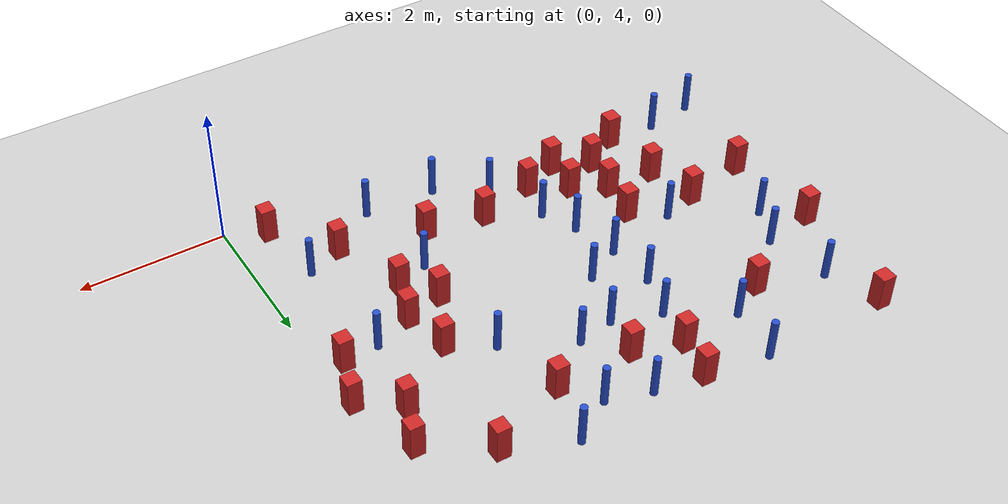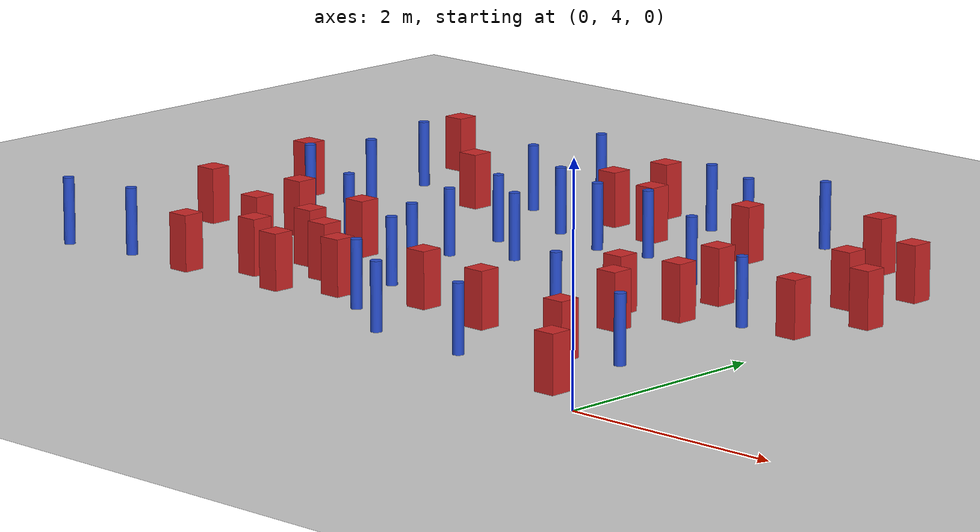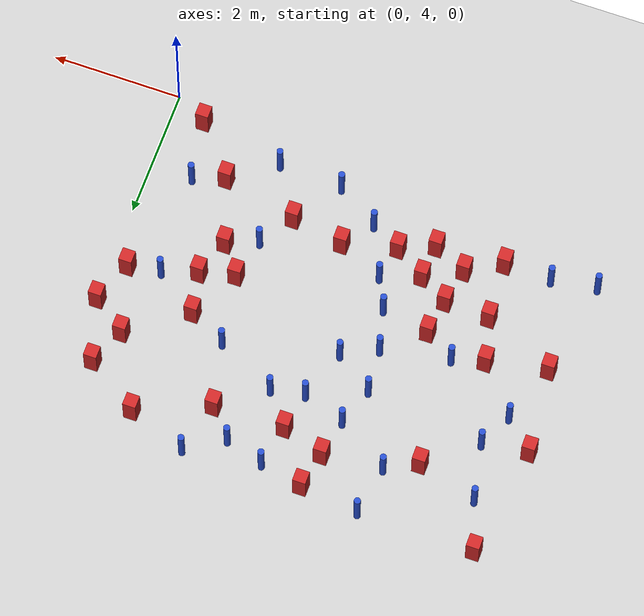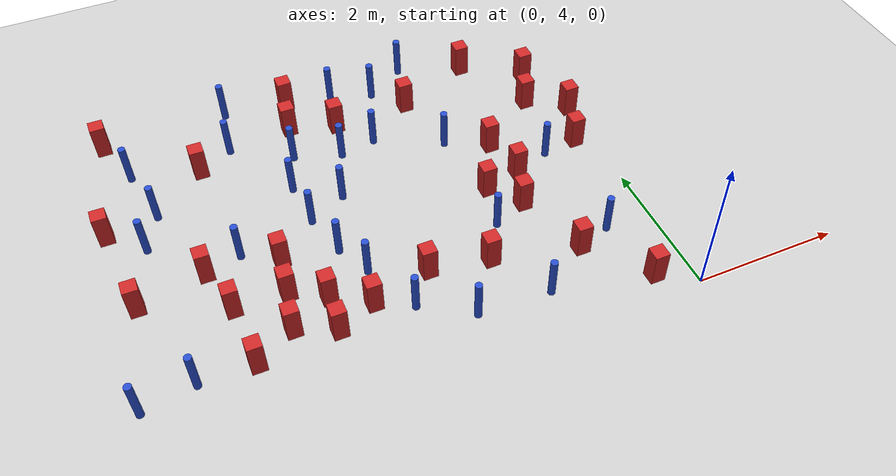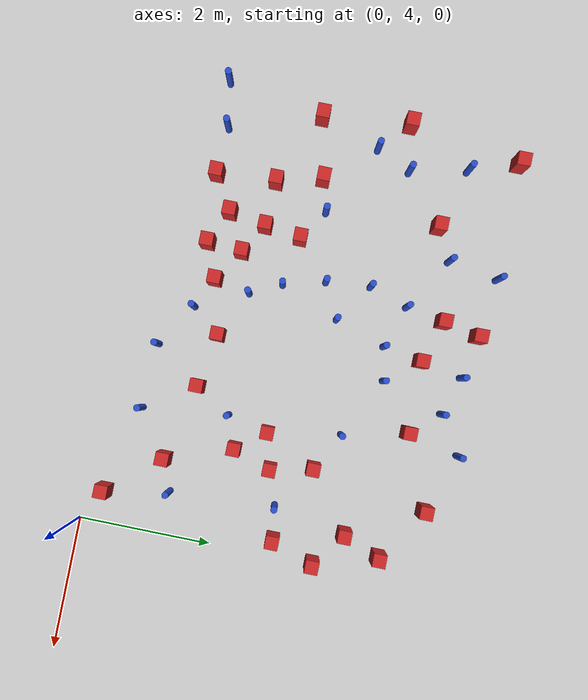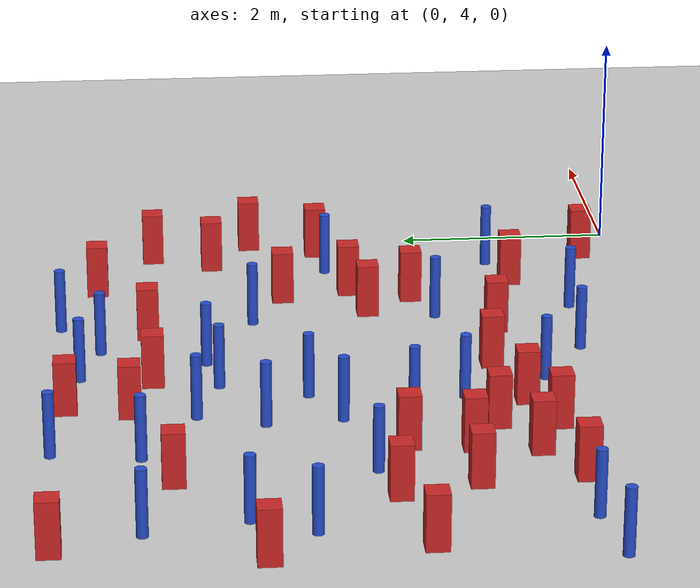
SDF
<sdf version="1.6">
 <world name="default">
  <model name="ground_plane">
   <static>1</static>
   <link name="link">
    <collision name="collision">
     <geometry><plane><normal>0 0 1</normal><size>100 100</size></plane></geometry>
     <surface><friction><ode><mu>100</mu><mu2>50</mu2></ode></friction></surface>
    </collision>
    <visual name="visual">
     <cast_shadows>0</cast_shadows>
     <geometry><plane><normal>0 0 1</normal><size>100 100</size></plane></geometry>
     <material>
      <ambient>1.0 1.0 1.0 1.0</ambient>
      <diffuse>0.8 0.8 0.8 1.0</diffuse>
      <specular>0.01 0.01 0.01 1.000000</specular>
     </material>
    </visual>
   </link>
  </model>
  <model name="square_post_obstacle1">
   <static>true</static>
   <pose>-2.25006319276 8.60352125065 -6.11067671241e-07 -5.50515727128e-06 -8.79689657224e-07 2.37013304536e-05</pose>
   <link name="link">
    <pose>0 0 0.25 0 -0 0</pose>
    <inertial>
     <mass>100</mass>
     <inertia>
      <ixx>0.166667</ixx>
      <ixy>0</ixy>
      <ixz>0</ixz>
      <iyy>0.166667</iyy>
      <iyz>0</iyz>
      <izz>0.166667</izz>
     </inertia>
    </inertial>
    <collision name="collision"><geometry><box><size>.2 .2 .5</size></box></geometry></collision>
    <visual name="visual">
     <geometry><box><size>.2 .2 .5</size></box></geometry>
     <material>
      <script><name>Gazebo/Red</name><uri>file://media/materials/scripts/gazebo.material</uri></script>
     </material>
    </visual>
   </link>
  </model>
  <model name="square_post_obstacle3">
   <static>true</static>
   <pose>-4.47341530026 5.08891844181 -6.11067671241e-07 -5.50515727128e-06 -8.79689657224e-07 2.37013304536e-05</pose>
   <link name="link">
    <pose>0 0 0.25 0 -0 0</pose>
    <inertial>
     <mass>100</mass>
     <inertia>
      <ixx>0.166667</ixx>
      <ixy>0</ixy>
      <ixz>0</ixz>
      <iyy>0.166667</iyy>
      <iyz>0</iyz>
      <izz>0.166667</izz>
     </inertia>
    </inertial>
    <collision name="collision"><geometry><box><size>.2 .2 .5</size></box></geometry></collision>
    <visual name="visual">
     <geometry><box><size>.2 .2 .5</size></box></geometry>
     <material>
      <script><name>Gazebo/Red</name><uri>file://media/materials/scripts/gazebo.material</uri></script>
     </material>
    </visual>
   </link>
  </model>
  <model name="square_post_obstacle4">
   <static>true</static>
   <pose>-0.0432336182488 7.56572862312 -6.11067671241e-07 -5.50515727128e-06 -8.79689657224e-07 2.37013304536e-05</pose>
   <link name="link">
    <pose>0 0 0.25 0 -0 0</pose>
    <inertial>
     <mass>100</mass>
     <inertia>
      <ixx>0.166667</ixx>
      <ixy>0</ixy>
      <ixz>0</ixz>
      <iyy>0.166667</iyy>
      <iyz>0</iyz>
      <izz>0.166667</izz>
     </inertia>
    </inertial>
    <collision name="collision"><geometry><box><size>.2 .2 .5</size></box></geometry></collision>
    <visual name="visual">
     <geometry><box><size>.2 .2 .5</size></box></geometry>
     <material>
      <script><name>Gazebo/Red</name><uri>file://media/materials/scripts/gazebo.material</uri></script>
     </material>
    </visual>
   </link>
  </model>
  <model name="pole_obstacle9">
   <static>true</static>
   <pose>-3.83908882054 5.84154530925 -9.47619616065e-06 5.49618799738e-07 2.3631041406e-07 -1.55090534801e-07</pose>
   <link name="link">
    <pose>0 0 0.3 0 -0 0</pose>
    <inertial>
     <mass>1</mass>
     <inertia><ixx>0.145833</ixx><ixy>0</ixy><ixz>0</ixz><iyy>0.145833</iyy><iyz>0</iyz><izz>0.125</izz></inertia>
    </inertial>
    <collision name="collision">
     <geometry><cylinder><radius>0.05</radius><length>.6</length></cylinder></geometry>
    </collision>
    <visual name="visual">
     <geometry><cylinder><radius>0.05</radius><length>.6</length></cylinder></geometry>
     <material>
      <script><name>Gazebo/Blue</name><uri>file://media/materials/scripts/gazebo.material</uri></script>
     </material>
    </visual>
   </link>
  </model>
  <model name="square_post_obstacle31">
   <static>true</static>
   <pose>-0.511008516349 4.30438146115 -6.11067671241e-07 -5.50515727128e-06 -8.79689657224e-07 2.37013304536e-05</pose>
   <link name="link">
    <pose>0 0 0.25 0 -0 0</pose>
    <inertial>
     <mass>100</mass>
     <inertia>
      <ixx>0.166667</ixx>
      <ixy>0</ixy>
      <ixz>0</ixz>
      <iyy>0.166667</iyy>
      <iyz>0</iyz>
      <izz>0.166667</izz>
     </inertia>
    </inertial>
    <collision name="collision"><geometry><box><size>.2 .2 .5</size></box></geometry></collision>
    <visual name="visual">
     <geometry><box><size>.2 .2 .5</size></box></geometry>
     <material>
      <script><name>Gazebo/Red</name><uri>file://media/materials/scripts/gazebo.material</uri></script>
     </material>
    </visual>
   </link>
  </model>
  <model name="pole_obstacle23">
   <static>true</static>
   <pose>-6.12151815289 7.84887427279 -9.47619616065e-06 5.49618799737e-07 2.36310414037e-07 -1.55090534814e-07</pose>
   <link name="link">
    <pose>0 0 0.3 0 -0 0</pose>
    <inertial>
     <mass>1</mass>
     <inertia><ixx>0.145833</ixx><ixy>0</ixy><ixz>0</ixz><iyy>0.145833</iyy><iyz>0</iyz><izz>0.125</izz></inertia>
    </inertial>
    <collision name="collision">
     <geometry><cylinder><radius>0.05</radius><length>.6</length></cylinder></geometry>
    </collision>
    <visual name="visual">
     <geometry><cylinder><radius>0.05</radius><length>.6</length></cylinder></geometry>
     <material>
      <script><name>Gazebo/Blue</name><uri>file://media/materials/scripts/gazebo.material</uri></script>
     </material>
    </visual>
   </link>
  </model>
  <model name="square_post_obstacle33">
   <static>true</static>
   <pose>-5.75571573055 6.5984440061 -6.11067671241e-07 -5.50515727128e-06 -8.79689657224e-07 2.37013304536e-05</pose>
   <link name="link">
    <pose>0 0 0.25 0 -0 0</pose>
    <inertial>
     <mass>100</mass>
     <inertia>
      <ixx>0.166667</ixx>
      <ixy>0</ixy>
      <ixz>0</ixz>
      <iyy>0.166667</iyy>
      <iyz>0</iyz>
      <izz>0.166667</izz>
     </inertia>
    </inertial>
    <collision name="collision"><geometry><box><size>.2 .2 .5</size></box></geometry></collision>
    <visual name="visual">
     <geometry><box><size>.2 .2 .5</size></box></geometry>
     <material>
      <script><name>Gazebo/Red</name><uri>file://media/materials/scripts/gazebo.material</uri></script>
     </material>
    </visual>
   </link>
  </model>
  <model name="pole_obstacle33">
   <static>true</static>
   <pose>-2.82234956257 4.65334116811 -9.47619616065e-06 5.49618799738e-07 2.3631041406e-07 -1.55090534801e-07</pose>
   <link name="link">
    <pose>0 0 0.3 0 -0 0</pose>
    <inertial>
     <mass>1</mass>
     <inertia><ixx>0.145833</ixx><ixy>0</ixy><ixz>0</ixz><iyy>0.145833</iyy><iyz>0</iyz><izz>0.125</izz></inertia>
    </inertial>
    <collision name="collision">
     <geometry><cylinder><radius>0.05</radius><length>.6</length></cylinder></geometry>
    </collision>
    <visual name="visual">
     <geometry><cylinder><radius>0.05</radius><length>.6</length></cylinder></geometry>
     <material>
      <script><name>Gazebo/Blue</name><uri>file://media/materials/scripts/gazebo.material</uri></script>
     </material>
    </visual>
   </link>
  </model>
  <model name="pole_obstacle38">
   <static>true</static>
   <pose>-4.23532948035 6.94570468544 -9.47619616065e-06 5.49618799737e-07 2.36310414037e-07 -1.55090534814e-07</pose>
   <link name="link">
    <pose>0 0 0.3 0 -0 0</pose>
    <inertial>
     <mass>1</mass>
     <inertia><ixx>0.145833</ixx><ixy>0</ixy><ixz>0</ixz><iyy>0.145833</iyy><iyz>0</iyz><izz>0.125</izz></inertia>
    </inertial>
    <collision name="collision">
     <geometry><cylinder><radius>0.05</radius><length>.6</length></cylinder></geometry>
    </collision>
    <visual name="visual">
     <geometry><cylinder><radius>0.05</radius><length>.6</length></cylinder></geometry>
     <material>
      <script><name>Gazebo/Blue</name><uri>file://media/materials/scripts/gazebo.material</uri></script>
     </material>
    </visual>
   </link>
  </model>
  <model name="pole_obstacle39">
   <static>true</static>
   <pose>-4.1013814431 8.21185930917 -9.47619616065e-06 5.49618799737e-07 2.36310414065e-07 -1.55090534796e-07</pose>
   <link name="link">
    <pose>0 0 0.3 0 -0 0</pose>
    <inertial>
     <mass>1</mass>
     <inertia><ixx>0.145833</ixx><ixy>0</ixy><ixz>0</ixz><iyy>0.145833</iyy><iyz>0</iyz><izz>0.125</izz></inertia>
    </inertial>
    <collision name="collision">
     <geometry><cylinder><radius>0.05</radius><length>.6</length></cylinder></geometry>
    </collision>
    <visual name="visual">
     <geometry><cylinder><radius>0.05</radius><length>.6</length></cylinder></geometry>
     <material>
      <script><name>Gazebo/Blue</name><uri>file://media/materials/scripts/gazebo.material</uri></script>
     </material>
    </visual>
   </link>
  </model>
  <model name="pole_obstacle43">
   <static>true</static>
   <pose>-3.71098148753 7.21338325096 -9.4761961606e-06 5.49618799729e-07 2.36310414006e-07 -1.55090534822e-07</pose>
   <link name="link">
    <pose>0 0 0.3 0 -0 0</pose>
    <inertial>
     <mass>1</mass>
     <inertia><ixx>0.145833</ixx><ixy>0</ixy><ixz>0</ixz><iyy>0.145833</iyy><iyz>0</iyz><izz>0.125</izz></inertia>
    </inertial>
    <collision name="collision">
     <geometry><cylinder><radius>0.05</radius><length>.6</length></cylinder></geometry>
    </collision>
    <visual name="visual">
     <geometry><cylinder><radius>0.05</radius><length>.6</length></cylinder></geometry>
     <material>
      <script><name>Gazebo/Blue</name><uri>file://media/materials/scripts/gazebo.material</uri></script>
     </material>
    </visual>
   </link>
  </model>
  <model name="square_post_obstacle50">
   <static>true</static>
   <pose>-5.57753883362 5.91320357837 -6.11067671241e-07 -5.50515727128e-06 -8.79689657224e-07 2.37013304536e-05</pose>
   <link name="link">
    <pose>0 0 0.25 0 -0 0</pose>
    <inertial>
     <mass>100</mass>
     <inertia>
      <ixx>0.166667</ixx>
      <ixy>0</ixy>
      <ixz>0</ixz>
      <iyy>0.166667</iyy>
      <iyz>0</iyz>
      <izz>0.166667</izz>
     </inertia>
    </inertial>
    <collision name="collision"><geometry><box><size>.2 .2 .5</size></box></geometry></collision>
    <visual name="visual">
     <geometry><box><size>.2 .2 .5</size></box></geometry>
     <material>
      <script><name>Gazebo/Red</name><uri>file://media/materials/scripts/gazebo.material</uri></script>
     </material>
    </visual>
   </link>
  </model>
  <model name="square_post_obstacle51">
   <static>true</static>
   <pose>-6.67154297437 6.40697601495 -6.11067671241e-07 -5.50515727128e-06 -8.79689657224e-07 2.37013304536e-05</pose>
   <link name="link">
    <pose>0 0 0.25 0 -0 0</pose>
    <inertial>
     <mass>100</mass>
     <inertia>
      <ixx>0.166667</ixx>
      <ixy>0</ixy>
      <ixz>0</ixz>
      <iyy>0.166667</iyy>
      <iyz>0</iyz>
      <izz>0.166667</izz>
     </inertia>
    </inertial>
    <collision name="collision"><geometry><box><size>.2 .2 .5</size></box></geometry></collision>
    <visual name="visual">
     <geometry><box><size>.2 .2 .5</size></box></geometry>
     <material>
      <script><name>Gazebo/Red</name><uri>file://media/materials/scripts/gazebo.material</uri></script>
     </material>
    </visual>
   </link>
  </model>
  <model name="square_post_obstacle52">
   <static>true</static>
   <pose>-0.568543663915 7.95376155736 -6.11067671241e-07 -5.50515727128e-06 -8.79689657224e-07 2.37013304536e-05</pose>
   <link name="link">
    <pose>0 0 0.25 0 -0 0</pose>
    <inertial>
     <mass>100</mass>
     <inertia>
      <ixx>0.166667</ixx>
      <ixy>0</ixy>
      <ixz>0</ixz>
      <iyy>0.166667</iyy>
      <iyz>0</iyz>
      <izz>0.166667</izz>
     </inertia>
    </inertial>
    <collision name="collision"><geometry><box><size>.2 .2 .5</size></box></geometry></collision>
    <visual name="visual">
     <geometry><box><size>.2 .2 .5</size></box></geometry>
     <material>
      <script><name>Gazebo/Red</name><uri>file://media/materials/scripts/gazebo.material</uri></script>
     </material>
    </visual>
   </link>
  </model>
  <model name="square_post_obstacle54">
   <static>true</static>
   <pose>-1.50517017736 6.09258591925 -6.11067671241e-07 -5.50515727128e-06 -8.79689657224e-07 2.37013304536e-05</pose>
   <link name="link">
    <pose>0 0 0.25 0 -0 0</pose>
    <inertial>
     <mass>100</mass>
     <inertia>
      <ixx>0.166667</ixx>
      <ixy>0</ixy>
      <ixz>0</ixz>
      <iyy>0.166667</iyy>
      <iyz>0</iyz>
      <izz>0.166667</izz>
     </inertia>
    </inertial>
    <collision name="collision"><geometry><box><size>.2 .2 .5</size></box></geometry></collision>
    <visual name="visual">
     <geometry><box><size>.2 .2 .5</size></box></geometry>
     <material>
      <script><name>Gazebo/Red</name><uri>file://media/materials/scripts/gazebo.material</uri></script>
     </material>
    </visual>
   </link>
  </model>
  <model name="square_post_obstacle62">
   <static>true</static>
   <pose>-1.3087715869 6.67067279448 -6.11067671241e-07 -5.50515727128e-06 -8.79689657224e-07 2.37013304536e-05</pose>
   <link name="link">
    <pose>0 0 0.25 0 -0 0</pose>
    <inertial>
     <mass>100</mass>
     <inertia>
      <ixx>0.166667</ixx>
      <ixy>0</ixy>
      <ixz>0</ixz>
      <iyy>0.166667</iyy>
      <iyz>0</iyz>
      <izz>0.166667</izz>
     </inertia>
    </inertial>
    <collision name="collision"><geometry><box><size>.2 .2 .5</size></box></geometry></collision>
    <visual name="visual">
     <geometry><box><size>.2 .2 .5</size></box></geometry>
     <material>
      <script><name>Gazebo/Red</name><uri>file://media/materials/scripts/gazebo.material</uri></script>
     </material>
    </visual>
   </link>
  </model>
  <model name="square_post_obstacle67">
   <static>true</static>
   <pose>-3.34194158575 8.57645506459 -6.11067671241e-07 -5.50515727128e-06 -8.79689657224e-07 2.37013304536e-05</pose>
   <link name="link">
    <pose>0 0 0.25 0 -0 0</pose>
    <inertial>
     <mass>100</mass>
     <inertia>
      <ixx>0.166667</ixx>
      <ixy>0</ixy>
      <ixz>0</ixz>
      <iyy>0.166667</iyy>
      <iyz>0</iyz>
      <izz>0.166667</izz>
     </inertia>
    </inertial>
    <collision name="collision"><geometry><box><size>.2 .2 .5</size></box></geometry></collision>
    <visual name="visual">
     <geometry><box><size>.2 .2 .5</size></box></geometry>
     <material>
      <script><name>Gazebo/Red</name><uri>file://media/materials/scripts/gazebo.material</uri></script>
     </material>
    </visual>
   </link>
  </model>
  <model name="square_post_obstacle73">
   <static>true</static>
   <pose>-4.80535518938 6.43678112208 -6.11067671241e-07 -5.50515727128e-06 -8.79689657224e-07 2.37013304536e-05</pose>
   <link name="link">
    <pose>0 0 0.25 0 -0 0</pose>
    <inertial>
     <mass>100</mass>
     <inertia>
      <ixx>0.166667</ixx>
      <ixy>0</ixy>
      <ixz>0</ixz>
      <iyy>0.166667</iyy>
      <iyz>0</iyz>
      <izz>0.166667</izz>
     </inertia>
    </inertial>
    <collision name="collision"><geometry><box><size>.2 .2 .5</size></box></geometry></collision>
    <visual name="visual">
     <geometry><box><size>.2 .2 .5</size></box></geometry>
     <material>
      <script><name>Gazebo/Red</name><uri>file://media/materials/scripts/gazebo.material</uri></script>
     </material>
    </visual>
   </link>
  </model>
  <model name="square_post_obstacle74">
   <static>true</static>
   <pose>-5.38527743276 8.44245769157 -6.11067671241e-07 -5.50515727128e-06 -8.79689657224e-07 2.37013304536e-05</pose>
   <link name="link">
    <pose>0 0 0.25 0 -0 0</pose>
    <inertial>
     <mass>100</mass>
     <inertia>
      <ixx>0.166667</ixx>
      <ixy>0</ixy>
      <ixz>0</ixz>
      <iyy>0.166667</iyy>
      <iyz>0</iyz>
      <izz>0.166667</izz>
     </inertia>
    </inertial>
    <collision name="collision"><geometry><box><size>.2 .2 .5</size></box></geometry></collision>
    <visual name="visual">
     <geometry><box><size>.2 .2 .5</size></box></geometry>
     <material>
      <script><name>Gazebo/Red</name><uri>file://media/materials/scripts/gazebo.material</uri></script>
     </material>
    </visual>
   </link>
  </model>
  <model name="square_post_obstacle75">
   <static>true</static>
   <pose>-6.55936579593 9.45315593938 -6.11067671241e-07 -5.50515727128e-06 -8.79689657224e-07 2.37013304536e-05</pose>
   <link name="link">
    <pose>0 0 0.25 0 -0 0</pose>
    <inertial>
     <mass>100</mass>
     <inertia>
      <ixx>0.166667</ixx>
      <ixy>0</ixy>
      <ixz>0</ixz>
      <iyy>0.166667</iyy>
      <iyz>0</iyz>
      <izz>0.166667</izz>
     </inertia>
    </inertial>
    <collision name="collision"><geometry><box><size>.2 .2 .5</size></box></geometry></collision>
    <visual name="visual">
     <geometry><box><size>.2 .2 .5</size></box></geometry>
     <material>
      <script><name>Gazebo/Red</name><uri>file://media/materials/scripts/gazebo.material</uri></script>
     </material>
    </visual>
   </link>
  </model>
  <model name="square_post_obstacle77">
   <static>true</static>
   <pose>-3.94836429204 5.3076510408 -6.11067671241e-07 -5.50515727128e-06 -8.79689657224e-07 2.37013304536e-05</pose>
   <link name="link">
    <pose>0 0 0.25 0 -0 0</pose>
    <inertial>
     <mass>100</mass>
     <inertia>
      <ixx>0.166667</ixx>
      <ixy>0</ixy>
      <ixz>0</ixz>
      <iyy>0.166667</iyy>
      <iyz>0</iyz>
      <izz>0.166667</izz>
     </inertia>
    </inertial>
    <collision name="collision"><geometry><box><size>.2 .2 .5</size></box></geometry></collision>
    <visual name="visual">
     <geometry><box><size>.2 .2 .5</size></box></geometry>
     <material>
      <script><name>Gazebo/Red</name><uri>file://media/materials/scripts/gazebo.material</uri></script>
     </material>
    </visual>
   </link>
  </model>
  <model name="square_post_obstacle78">
   <static>true</static>
   <pose>-3.8751265757 9.34688753163 -6.11067671241e-07 -5.50515727128e-06 -8.79689657224e-07 2.37013304536e-05</pose>
   <link name="link">
    <pose>0 0 0.25 0 -0 0</pose>
    <inertial>
     <mass>100</mass>
     <inertia>
      <ixx>0.166667</ixx>
      <ixy>0</ixy>
      <ixz>0</ixz>
      <iyy>0.166667</iyy>
      <iyz>0</iyz>
      <izz>0.166667</izz>
     </inertia>
    </inertial>
    <collision name="collision"><geometry><box><size>.2 .2 .5</size></box></geometry></collision>
    <visual name="visual">
     <geometry><box><size>.2 .2 .5</size></box></geometry>
     <material>
      <script><name>Gazebo/Red</name><uri>file://media/materials/scripts/gazebo.material</uri></script>
     </material>
    </visual>
   </link>
  </model>
  <model name="square_post_obstacle79">
   <static>true</static>
   <pose>-1.15653972741 5.0897406758 -6.11067671241e-07 -5.50515727128e-06 -8.79689657224e-07 2.37013304536e-05</pose>
   <link name="link">
    <pose>0 0 0.25 0 -0 0</pose>
    <inertial>
     <mass>100</mass>
     <inertia>
      <ixx>0.166667</ixx>
      <ixy>0</ixy>
      <ixz>0</ixz>
      <iyy>0.166667</iyy>
      <iyz>0</iyz>
      <izz>0.166667</izz>
     </inertia>
    </inertial>
    <collision name="collision"><geometry><box><size>.2 .2 .5</size></box></geometry></collision>
    <visual name="visual">
     <geometry><box><size>.2 .2 .5</size></box></geometry>
     <material>
      <script><name>Gazebo/Red</name><uri>file://media/materials/scripts/gazebo.material</uri></script>
     </material>
    </visual>
   </link>
  </model>
  <model name="pole_obstacle85">
   <static>true</static>
   <pose>-3.21704090867 9.22559836248 -9.47619616065e-06 5.49618799738e-07 2.36310414059e-07 -1.55090534802e-07</pose>
   <link name="link">
    <pose>0 0 0.3 0 -0 0</pose>
    <inertial>
     <mass>1</mass>
     <inertia><ixx>0.145833</ixx><ixy>0</ixy><ixz>0</ixz><iyy>0.145833</iyy><iyz>0</iyz><izz>0.125</izz></inertia>
    </inertial>
    <collision name="collision">
     <geometry><cylinder><radius>0.05</radius><length>.6</length></cylinder></geometry>
    </collision>
    <visual name="visual">
     <geometry><cylinder><radius>0.05</radius><length>.6</length></cylinder></geometry>
     <material>
      <script><name>Gazebo/Blue</name><uri>file://media/materials/scripts/gazebo.material</uri></script>
     </material>
    </visual>
   </link>
  </model>
  <model name="pole_obstacle90">
   <static>true</static>
   <pose>-0.775299651558 6.85420034907 -9.47619616065e-06 5.49618799737e-07 2.36310414065e-07 -1.55090534796e-07</pose>
   <link name="link">
    <pose>0 0 0.3 0 -0 0</pose>
    <inertial>
     <mass>1</mass>
     <inertia><ixx>0.145833</ixx><ixy>0</ixy><ixz>0</ixz><iyy>0.145833</iyy><iyz>0</iyz><izz>0.125</izz></inertia>
    </inertial>
    <collision name="collision">
     <geometry><cylinder><radius>0.05</radius><length>.6</length></cylinder></geometry>
    </collision>
    <visual name="visual">
     <geometry><cylinder><radius>0.05</radius><length>.6</length></cylinder></geometry>
     <material>
      <script><name>Gazebo/Blue</name><uri>file://media/materials/scripts/gazebo.material</uri></script>
     </material>
    </visual>
   </link>
  </model>
  <model name="pole_obstacle95">
   <static>true</static>
   <pose>-2.0522892426 9.40675290309 -9.4761961606e-06 5.49618799729e-07 2.36310414e-07 -1.55090534824e-07</pose>
   <link name="link">
    <pose>0 0 0.3 0 -0 0</pose>
    <inertial>
     <mass>1</mass>
     <inertia><ixx>0.145833</ixx><ixy>0</ixy><ixz>0</ixz><iyy>0.145833</iyy><iyz>0</iyz><izz>0.125</izz></inertia>
    </inertial>
    <collision name="collision">
     <geometry><cylinder><radius>0.05</radius><length>.6</length></cylinder></geometry>
    </collision>
    <visual name="visual">
     <geometry><cylinder><radius>0.05</radius><length>.6</length></cylinder></geometry>
     <material>
      <script><name>Gazebo/Blue</name><uri>file://media/materials/scripts/gazebo.material</uri></script>
     </material>
    </visual>
   </link>
  </model>
  <model name="pole_obstacle97">
   <static>true</static>
   <pose>-6.93066390084 4.92367612603 -9.47619616065e-06 5.49618799737e-07 2.36310414037e-07 -1.55090534814e-07</pose>
   <link name="link">
    <pose>0 0 0.3 0 -0 0</pose>
    <inertial>
     <mass>1</mass>
     <inertia><ixx>0.145833</ixx><ixy>0</ixy><ixz>0</ixz><iyy>0.145833</iyy><iyz>0</iyz><izz>0.125</izz></inertia>
    </inertial>
    <collision name="collision">
     <geometry><cylinder><radius>0.05</radius><length>.6</length></cylinder></geometry>
    </collision>
    <visual name="visual">
     <geometry><cylinder><radius>0.05</radius><length>.6</length></cylinder></geometry>
     <material>
      <script><name>Gazebo/Blue</name><uri>file://media/materials/scripts/gazebo.material</uri></script>
     </material>
    </visual>
   </link>
  </model>
  <model name="pole_obstacle101">
   <static>true</static>
   <pose>-5.27121348464 6.73705856261 -9.47619616065e-06 5.49618799737e-07 2.36310414037e-07 -1.55090534814e-07</pose>
   <link name="link">
    <pose>0 0 0.3 0 -0 0</pose>
    <inertial>
     <mass>1</mass>
     <inertia><ixx>0.145833</ixx><ixy>0</ixy><ixz>0</ixz><iyy>0.145833</iyy><iyz>0</iyz><izz>0.125</izz></inertia>
    </inertial>
    <collision name="collision">
     <geometry><cylinder><radius>0.05</radius><length>.6</length></cylinder></geometry>
    </collision>
    <visual name="visual">
     <geometry><cylinder><radius>0.05</radius><length>.6</length></cylinder></geometry>
     <material>
      <script><name>Gazebo/Blue</name><uri>file://media/materials/scripts/gazebo.material</uri></script>
     </material>
    </visual>
   </link>
  </model>
  <model name="pole_obstacle106">
   <static>true</static>
   <pose>-1.83249032574 4.60254836248 -9.47619616065e-06 5.49618799737e-07 2.36310414061e-07 -1.550905348e-07</pose>
   <link name="link">
    <pose>0 0 0.3 0 -0 0</pose>
    <inertial>
     <mass>1</mass>
     <inertia><ixx>0.145833</ixx><ixy>0</ixy><ixz>0</ixz><iyy>0.145833</iyy><iyz>0</iyz><izz>0.125</izz></inertia>
    </inertial>
    <collision name="collision">
     <geometry><cylinder><radius>0.05</radius><length>.6</length></cylinder></geometry>
    </collision>
    <visual name="visual">
     <geometry><cylinder><radius>0.05</radius><length>.6</length></cylinder></geometry>
     <material>
      <script><name>Gazebo/Blue</name><uri>file://media/materials/scripts/gazebo.material</uri></script>
     </material>
    </visual>
   </link>
  </model>
  <model name="square_post_obstacle94">
   <static>true</static>
   <pose>-1.15068098419 9.06588244258 -6.11067671241e-07 -5.50515727128e-06 -8.79689657224e-07 2.37013304536e-05</pose>
   <link name="link">
    <pose>0 0 0.25 0 -0 0</pose>
    <inertial>
     <mass>100</mass>
     <inertia>
      <ixx>0.166667</ixx>
      <ixy>0</ixy>
      <ixz>0</ixz>
      <iyy>0.166667</iyy>
      <iyz>0</iyz>
      <izz>0.166667</izz>
     </inertia>
    </inertial>
    <collision name="collision"><geometry><box><size>.2 .2 .5</size></box></geometry></collision>
    <visual name="visual">
     <geometry><box><size>.2 .2 .5</size></box></geometry>
     <material>
      <script><name>Gazebo/Red</name><uri>file://media/materials/scripts/gazebo.material</uri></script>
     </material>
    </visual>
   </link>
  </model>
  <model name="square_post_obstacle96">
   <static>true</static>
   <pose>-2.32007383013 5.36904078113 -6.11067671241e-07 -5.50515727128e-06 -8.79689657224e-07 2.37013304536e-05</pose>
   <link name="link">
    <pose>0 0 0.25 0 -0 0</pose>
    <inertial>
     <mass>100</mass>
     <inertia>
      <ixx>0.166667</ixx>
      <ixy>0</ixy>
      <ixz>0</ixz>
      <iyy>0.166667</iyy>
      <iyz>0</iyz>
      <izz>0.166667</izz>
     </inertia>
    </inertial>
    <collision name="collision"><geometry><box><size>.2 .2 .5</size></box></geometry></collision>
    <visual name="visual">
     <geometry><box><size>.2 .2 .5</size></box></geometry>
     <material>
      <script><name>Gazebo/Red</name><uri>file://media/materials/scripts/gazebo.material</uri></script>
     </material>
    </visual>
   </link>
  </model>
  <model name="square_post_obstacle101">
   <static>true</static>
   <pose>-6.81804268953 7.73399036318 -6.11067671241e-07 -5.50515727128e-06 -8.79689657224e-07 2.37013304536e-05</pose>
   <link name="link">
    <pose>0 0 0.25 0 -0 0</pose>
    <inertial>
     <mass>100</mass>
     <inertia>
      <ixx>0.166667</ixx>
      <ixy>0</ixy>
      <ixz>0</ixz>
      <iyy>0.166667</iyy>
      <iyz>0</iyz>
      <izz>0.166667</izz>
     </inertia>
    </inertial>
    <collision name="collision"><geometry><box><size>.2 .2 .5</size></box></geometry></collision>
    <visual name="visual">
     <geometry><box><size>.2 .2 .5</size></box></geometry>
     <material>
      <script><name>Gazebo/Red</name><uri>file://media/materials/scripts/gazebo.material</uri></script>
     </material>
    </visual>
   </link>
  </model>
  <model name="pole_obstacle116">
   <static>true</static>
   <pose>-3.45286718539 7.99046886957 -9.47619616065e-06 5.49618799737e-07 2.3631041406e-07 -1.55090534802e-07</pose>
   <link name="link">
    <pose>0 0 0.3 0 -0 0</pose>
    <inertial>
     <mass>1</mass>
     <inertia><ixx>0.145833</ixx><ixy>0</ixy><ixz>0</ixz><iyy>0.145833</iyy><iyz>0</iyz><izz>0.125</izz></inertia>
    </inertial>
    <collision name="collision">
     <geometry><cylinder><radius>0.05</radius><length>.6</length></cylinder></geometry>
    </collision>
    <visual name="visual">
     <geometry><cylinder><radius>0.05</radius><length>.6</length></cylinder></geometry>
     <material>
      <script><name>Gazebo/Blue</name><uri>file://media/materials/scripts/gazebo.material</uri></script>
     </material>
    </visual>
   </link>
  </model>
  <model name="square_post_obstacle108">
   <static>true</static>
   <pose>-1.44497746439 7.30822596652 -6.11067671241e-07 -5.50515727128e-06 -8.79689657224e-07 2.37013304536e-05</pose>
   <link name="link">
    <pose>0 0 0.25 0 -0 0</pose>
    <inertial>
     <mass>100</mass>
     <inertia>
      <ixx>0.166667</ixx>
      <ixy>0</ixy>
      <ixz>0</ixz>
      <iyy>0.166667</iyy>
      <iyz>0</iyz>
      <izz>0.166667</izz>
     </inertia>
    </inertial>
    <collision name="collision"><geometry><box><size>.2 .2 .5</size></box></geometry></collision>
    <visual name="visual">
     <geometry><box><size>.2 .2 .5</size></box></geometry>
     <material>
      <script><name>Gazebo/Red</name><uri>file://media/materials/scripts/gazebo.material</uri></script>
     </material>
    </visual>
   </link>
  </model>
  <model name="square_post_obstacle112">
   <static>true</static>
   <pose>-3.99219661013 8.78867534175 -6.11067671241e-07 -5.50515727128e-06 -8.79689657224e-07 2.37013304536e-05</pose>
   <link name="link">
    <pose>0 0 0.25 0 -0 0</pose>
    <inertial>
     <mass>100</mass>
     <inertia>
      <ixx>0.166667</ixx>
      <ixy>0</ixy>
      <ixz>0</ixz>
      <iyy>0.166667</iyy>
      <iyz>0</iyz>
      <izz>0.166667</izz>
     </inertia>
    </inertial>
    <collision name="collision"><geometry><box><size>.2 .2 .5</size></box></geometry></collision>
    <visual name="visual">
     <geometry><box><size>.2 .2 .5</size></box></geometry>
     <material>
      <script><name>Gazebo/Red</name><uri>file://media/materials/scripts/gazebo.material</uri></script>
     </material>
    </visual>
   </link>
  </model>
  <model name="square_post_obstacle113">
   <static>true</static>
   <pose>-5.51689813151 5.01721623003 -6.11067671241e-07 -5.50515727128e-06 -8.79689657224e-07 2.37013304536e-05</pose>
   <link name="link">
    <pose>0 0 0.25 0 -0 0</pose>
    <inertial>
     <mass>100</mass>
     <inertia>
      <ixx>0.166667</ixx>
      <ixy>0</ixy>
      <ixz>0</ixz>
      <iyy>0.166667</iyy>
      <iyz>0</iyz>
      <izz>0.166667</izz>
     </inertia>
    </inertial>
    <collision name="collision"><geometry><box><size>.2 .2 .5</size></box></geometry></collision>
    <visual name="visual">
     <geometry><box><size>.2 .2 .5</size></box></geometry>
     <material>
      <script><name>Gazebo/Red</name><uri>file://media/materials/scripts/gazebo.material</uri></script>
     </material>
    </visual>
   </link>
  </model>
  <model name="pole_obstacle133">
   <static>true</static>
   <pose>-2.94121838739 8.08586506591 -9.4761961606e-06 5.49618799729e-07 2.36310414e-07 -1.55090534824e-07</pose>
   <link name="link">
    <pose>0 0 0.3 0 -0 0</pose>
    <inertial>
     <mass>1</mass>
     <inertia><ixx>0.145833</ixx><ixy>0</ixy><ixz>0</ixz><iyy>0.145833</iyy><iyz>0</iyz><izz>0.125</izz></inertia>
    </inertial>
    <collision name="collision">
     <geometry><cylinder><radius>0.05</radius><length>.6</length></cylinder></geometry>
    </collision>
    <visual name="visual">
     <geometry><cylinder><radius>0.05</radius><length>.6</length></cylinder></geometry>
     <material>
      <script><name>Gazebo/Blue</name><uri>file://media/materials/scripts/gazebo.material</uri></script>
     </material>
    </visual>
   </link>
  </model>
  <model name="square_post_obstacle115">
   <static>true</static>
   <pose>-4.88239126304 5.88622130407 -6.11067671241e-07 -5.50515727128e-06 -8.79689657224e-07 2.37013304536e-05</pose>
   <link name="link">
    <pose>0 0 0.25 0 -0 0</pose>
    <inertial>
     <mass>100</mass>
     <inertia>
      <ixx>0.166667</ixx>
      <ixy>0</ixy>
      <ixz>0</ixz>
      <iyy>0.166667</iyy>
      <iyz>0</iyz>
      <izz>0.166667</izz>
     </inertia>
    </inertial>
    <collision name="collision"><geometry><box><size>.2 .2 .5</size></box></geometry></collision>
    <visual name="visual">
     <geometry><box><size>.2 .2 .5</size></box></geometry>
     <material>
      <script><name>Gazebo/Red</name><uri>file://media/materials/scripts/gazebo.material</uri></script>
     </material>
    </visual>
   </link>
  </model>
  <model name="pole_obstacle136">
   <static>true</static>
   <pose>-1.97990402569 5.90276029699 -9.47619616065e-06 5.49618799737e-07 2.36310414064e-07 -1.55090534797e-07</pose>
   <link name="link">
    <pose>0 0 0.3 0 -0 0</pose>
    <inertial>
     <mass>1</mass>
     <inertia><ixx>0.145833</ixx><ixy>0</ixy><ixz>0</ixz><iyy>0.145833</iyy><iyz>0</iyz><izz>0.125</izz></inertia>
    </inertial>
    <collision name="collision">
     <geometry><cylinder><radius>0.05</radius><length>.6</length></cylinder></geometry>
    </collision>
    <visual name="visual">
     <geometry><cylinder><radius>0.05</radius><length>.6</length></cylinder></geometry>
     <material>
      <script><name>Gazebo/Blue</name><uri>file://media/materials/scripts/gazebo.material</uri></script>
     </material>
    </visual>
   </link>
  </model>
  <model name="pole_obstacle137">
   <static>true</static>
   <pose>-2.62347071842 9.03991275322 -9.4761961606e-06 5.49618799729e-07 2.36310414e-07 -1.55090534824e-07</pose>
   <link name="link">
    <pose>0 0 0.3 0 -0 0</pose>
    <inertial>
     <mass>1</mass>
     <inertia><ixx>0.145833</ixx><ixy>0</ixy><ixz>0</ixz><iyy>0.145833</iyy><iyz>0</iyz><izz>0.125</izz></inertia>
    </inertial>
    <collision name="collision">
     <geometry><cylinder><radius>0.05</radius><length>.6</length></cylinder></geometry>
    </collision>
    <visual name="visual">
     <geometry><cylinder><radius>0.05</radius><length>.6</length></cylinder></geometry>
     <material>
      <script><name>Gazebo/Blue</name><uri>file://media/materials/scripts/gazebo.material</uri></script>
     </material>
    </visual>
   </link>
  </model>
  <model name="pole_obstacle138">
   <static>true</static>
   <pose>-0.668725392458 5.25937002885 -9.47619616065e-06 5.49618799737e-07 2.36310414065e-07 -1.55090534796e-07</pose>
   <link name="link">
    <pose>0 0 0.3 0 -0 0</pose>
    <inertial>
     <mass>1</mass>
     <inertia><ixx>0.145833</ixx><ixy>0</ixy><ixz>0</ixz><iyy>0.145833</iyy><iyz>0</iyz><izz>0.125</izz></inertia>
    </inertial>
    <collision name="collision">
     <geometry><cylinder><radius>0.05</radius><length>.6</length></cylinder></geometry>
    </collision>
    <visual name="visual">
     <geometry><cylinder><radius>0.05</radius><length>.6</length></cylinder></geometry>
     <material>
      <script><name>Gazebo/Blue</name><uri>file://media/materials/scripts/gazebo.material</uri></script>
     </material>
    </visual>
   </link>
  </model>
  <model name="square_post_obstacle128">
   <static>true</static>
   <pose>-3.13344344545 5.5157148664 -6.11067671241e-07 -5.50515727128e-06 -8.79689657224e-07 2.37013304536e-05</pose>
   <link name="link">
    <pose>0 0 0.25 0 -0 0</pose>
    <inertial>
     <mass>100</mass>
     <inertia>
      <ixx>0.166667</ixx>
      <ixy>0</ixy>
      <ixz>0</ixz>
      <iyy>0.166667</iyy>
      <iyz>0</iyz>
      <izz>0.166667</izz>
     </inertia>
    </inertial>
    <collision name="collision"><geometry><box><size>.2 .2 .5</size></box></geometry></collision>
    <visual name="visual">
     <geometry><box><size>.2 .2 .5</size></box></geometry>
     <material>
      <script><name>Gazebo/Red</name><uri>file://media/materials/scripts/gazebo.material</uri></script>
     </material>
    </visual>
   </link>
  </model>
  <model name="square_post_obstacle137">
   <static>true</static>
   <pose>-0.333699703012 8.52232541676 -6.11067671241e-07 -5.50515727128e-06 -8.79689657224e-07 2.37013304536e-05</pose>
   <link name="link">
    <pose>0 0 0.25 0 -0 0</pose>
    <inertial>
     <mass>100</mass>
     <inertia>
      <ixx>0.166667</ixx>
      <ixy>0</ixy>
      <ixz>0</ixz>
      <iyy>0.166667</iyy>
      <iyz>0</iyz>
      <izz>0.166667</izz>
     </inertia>
    </inertial>
    <collision name="collision"><geometry><box><size>.2 .2 .5</size></box></geometry></collision>
    <visual name="visual">
     <geometry><box><size>.2 .2 .5</size></box></geometry>
     <material>
      <script><name>Gazebo/Red</name><uri>file://media/materials/scripts/gazebo.material</uri></script>
     </material>
    </visual>
   </link>
  </model>
  <model name="square_post_obstacle139">
   <static>true</static>
   <pose>-1.84014467747 6.52979932996 -6.11067671241e-07 -5.50515727128e-06 -8.79689657224e-07 2.37013304536e-05</pose>
   <link name="link">
    <pose>0 0 0.25 0 -0 0</pose>
    <inertial>
     <mass>100</mass>
     <inertia>
      <ixx>0.166667</ixx>
      <ixy>0</ixy>
      <ixz>0</ixz>
      <iyy>0.166667</iyy>
      <iyz>0</iyz>
      <izz>0.166667</izz>
     </inertia>
    </inertial>
    <collision name="collision"><geometry><box><size>.2 .2 .5</size></box></geometry></collision>
    <visual name="visual">
     <geometry><box><size>.2 .2 .5</size></box></geometry>
     <material>
      <script><name>Gazebo/Red</name><uri>file://media/materials/scripts/gazebo.material</uri></script>
     </material>
    </visual>
   </link>
  </model>
  <model name="pole_obstacle150">
   <static>true</static>
   <pose>-4.29627537328 7.61978616568 -9.47619616065e-06 5.49618799737e-07 2.36310414037e-07 -1.55090534814e-07</pose>
   <link name="link">
    <pose>0 0 0.3 0 -0 0</pose>
    <inertial>
     <mass>1</mass>
     <inertia><ixx>0.145833</ixx><ixy>0</ixy><ixz>0</ixz><iyy>0.145833</iyy><iyz>0</iyz><izz>0.125</izz></inertia>
    </inertial>
    <collision name="collision">
     <geometry><cylinder><radius>0.05</radius><length>.6</length></cylinder></geometry>
    </collision>
    <visual name="visual">
     <geometry><cylinder><radius>0.05</radius><length>.6</length></cylinder></geometry>
     <material>
      <script><name>Gazebo/Blue</name><uri>file://media/materials/scripts/gazebo.material</uri></script>
     </material>
    </visual>
   </link>
  </model>
  <model name="pole_obstacle155">
   <static>true</static>
   <pose>-2.02000743668 7.62138105492 -9.47619616065e-06 5.49618799737e-07 2.36310414067e-07 -1.55090534796e-07</pose>
   <link name="link">
    <pose>0 0 0.3 0 -0 0</pose>
    <inertial>
     <mass>1</mass>
     <inertia><ixx>0.145833</ixx><ixy>0</ixy><ixz>0</ixz><iyy>0.145833</iyy><iyz>0</iyz><izz>0.125</izz></inertia>
    </inertial>
    <collision name="collision">
     <geometry><cylinder><radius>0.05</radius><length>.6</length></cylinder></geometry>
    </collision>
    <visual name="visual">
     <geometry><cylinder><radius>0.05</radius><length>.6</length></cylinder></geometry>
     <material>
      <script><name>Gazebo/Blue</name><uri>file://media/materials/scripts/gazebo.material</uri></script>
     </material>
    </visual>
   </link>
  </model>
  <model name="pole_obstacle158">
   <static>true</static>
   <pose>-4.78055781782 9.47109144022 -9.47619616065e-06 5.49618799737e-07 2.36310414065e-07 -1.55090534796e-07</pose>
   <link name="link">
    <pose>0 0 0.3 0 -0 0</pose>
    <inertial>
     <mass>1</mass>
     <inertia><ixx>0.145833</ixx><ixy>0</ixy><ixz>0</ixz><iyy>0.145833</iyy><iyz>0</iyz><izz>0.125</izz></inertia>
    </inertial>
    <collision name="collision">
     <geometry><cylinder><radius>0.05</radius><length>.6</length></cylinder></geometry>
    </collision>
    <visual name="visual">
     <geometry><cylinder><radius>0.05</radius><length>.6</length></cylinder></geometry>
     <material>
      <script><name>Gazebo/Blue</name><uri>file://media/materials/scripts/gazebo.material</uri></script>
     </material>
    </visual>
   </link>
  </model>
  <model name="pole_obstacle173">
   <static>true</static>
   <pose>-6.24096512382 5.03750600554 -9.47619616065e-06 5.49618799737e-07 2.36310414037e-07 -1.55090534814e-07</pose>
   <link name="link">
    <pose>0 0 0.3 0 -0 0</pose>
    <inertial>
     <mass>1</mass>
     <inertia><ixx>0.145833</ixx><ixy>0</ixy><ixz>0</ixz><iyy>0.145833</iyy><iyz>0</iyz><izz>0.125</izz></inertia>
    </inertial>
    <collision name="collision">
     <geometry><cylinder><radius>0.05</radius><length>.6</length></cylinder></geometry>
    </collision>
    <visual name="visual">
     <geometry><cylinder><radius>0.05</radius><length>.6</length></cylinder></geometry>
     <material>
      <script><name>Gazebo/Blue</name><uri>file://media/materials/scripts/gazebo.material</uri></script>
     </material>
    </visual>
   </link>
  </model>
  <model name="pole_obstacle182">
   <static>true</static>
   <pose>-6.30982538429 8.71692265762 -9.47619616065e-06 5.49618799737e-07 2.36310414065e-07 -1.55090534796e-07</pose>
   <link name="link">
    <pose>0 0 0.3 0 -0 0</pose>
    <inertial>
     <mass>1</mass>
     <inertia><ixx>0.145833</ixx><ixy>0</ixy><ixz>0</ixz><iyy>0.145833</iyy><iyz>0</iyz><izz>0.125</izz></inertia>
    </inertial>
    <collision name="collision">
     <geometry><cylinder><radius>0.05</radius><length>.6</length></cylinder></geometry>
    </collision>
    <visual name="visual">
     <geometry><cylinder><radius>0.05</radius><length>.6</length></cylinder></geometry>
     <material>
      <script><name>Gazebo/Blue</name><uri>file://media/materials/scripts/gazebo.material</uri></script>
     </material>
    </visual>
   </link>
  </model>
  <model name="pole_obstacle185">
   <static>true</static>
   <pose>-3.48185204143 5.07268932788 -9.47619616065e-06 5.49618799738e-07 2.3631041406e-07 -1.55090534801e-07</pose>
   <link name="link">
    <pose>0 0 0.3 0 -0 0</pose>
    <inertial>
     <mass>1</mass>
     <inertia><ixx>0.145833</ixx><ixy>0</ixy><ixz>0</ixz><iyy>0.145833</iyy><iyz>0</iyz><izz>0.125</izz></inertia>
    </inertial>
    <collision name="collision">
     <geometry><cylinder><radius>0.05</radius><length>.6</length></cylinder></geometry>
    </collision>
    <visual name="visual">
     <geometry><cylinder><radius>0.05</radius><length>.6</length></cylinder></geometry>
     <material>
      <script><name>Gazebo/Blue</name><uri>file://media/materials/scripts/gazebo.material</uri></script>
     </material>
    </visual>
   </link>
  </model>
  <model name="square_post_obstacle195">
   <static>true</static>
   <pose>-4.43160219707 5.620450622 -6.11067671241e-07 -5.50515727128e-06 -8.79689657224e-07 2.37013304536e-05</pose>
   <link name="link">
    <pose>0 0 0.25 0 -0 0</pose>
    <inertial>
     <mass>100</mass>
     <inertia>
      <ixx>0.166667</ixx>
      <ixy>0</ixy>
      <ixz>0</ixz>
      <iyy>0.166667</iyy>
      <iyz>0</iyz>
      <izz>0.166667</izz>
     </inertia>
    </inertial>
    <collision name="collision"><geometry><box><size>.2 .2 .5</size></box></geometry></collision>
    <visual name="visual">
     <geometry><box><size>.2 .2 .5</size></box></geometry>
     <material>
      <script><name>Gazebo/Red</name><uri>file://media/materials/scripts/gazebo.material</uri></script>
     </material>
    </visual>
   </link>
  </model>
  <model name="square_post_obstacle196">
   <static>true</static>
   <pose>-0.276095388412 6.91914028188 -6.11067671241e-07 -5.50515727128e-06 -8.79689657224e-07 2.37013304536e-05</pose>
   <link name="link">
    <pose>0 0 0.25 0 -0 0</pose>
    <inertial>
     <mass>100</mass>
     <inertia>
      <ixx>0.166667</ixx>
      <ixy>0</ixy>
      <ixz>0</ixz>
      <iyy>0.166667</iyy>
      <iyz>0</iyz>
      <izz>0.166667</izz>
     </inertia>
    </inertial>
    <collision name="collision"><geometry><box><size>.2 .2 .5</size></box></geometry></collision>
    <visual name="visual">
     <geometry><box><size>.2 .2 .5</size></box></geometry>
     <material>
      <script><name>Gazebo/Red</name><uri>file://media/materials/scripts/gazebo.material</uri></script>
     </material>
    </visual>
   </link>
  </model>
  <model name="pole_obstacle201">
   <static>true</static>
   <pose>-6.36777335604 7.3206714066 -9.47619616065e-06 5.49618799737e-07 2.36310414037e-07 -1.55090534814e-07</pose>
   <link name="link">
    <pose>0 0 0.3 0 -0 0</pose>
    <inertial>
     <mass>1</mass>
     <inertia><ixx>0.145833</ixx><ixy>0</ixy><ixz>0</ixz><iyy>0.145833</iyy><iyz>0</iyz><izz>0.125</izz></inertia>
    </inertial>
    <collision name="collision">
     <geometry><cylinder><radius>0.05</radius><length>.6</length></cylinder></geometry>
    </collision>
    <visual name="visual">
     <geometry><cylinder><radius>0.05</radius><length>.6</length></cylinder></geometry>
     <material>
      <script><name>Gazebo/Blue</name><uri>file://media/materials/scripts/gazebo.material</uri></script>
     </material>
    </visual>
   </link>
  </model>
  <model name="pole_obstacle203">
   <static>true</static>
   <pose>-4.06749119055 6.31428626641 -9.47619616065e-06 5.49618799737e-07 2.36310414037e-07 -1.55090534814e-07</pose>
   <link name="link">
    <pose>0 0 0.3 0 -0 0</pose>
    <inertial>
     <mass>1</mass>
     <inertia><ixx>0.145833</ixx><ixy>0</ixy><ixz>0</ixz><iyy>0.145833</iyy><iyz>0</iyz><izz>0.125</izz></inertia>
    </inertial>
    <collision name="collision">
     <geometry><cylinder><radius>0.05</radius><length>.6</length></cylinder></geometry>
    </collision>
    <visual name="visual">
     <geometry><cylinder><radius>0.05</radius><length>.6</length></cylinder></geometry>
     <material>
      <script><name>Gazebo/Blue</name><uri>file://media/materials/scripts/gazebo.material</uri></script>
     </material>
    </visual>
   </link>
  </model>
  <model name="pole_obstacle214">
   <static>true</static>
   <pose>-4.90424095285 8.70335000965 -9.47619616065e-06 5.49618799737e-07 2.36310414065e-07 -1.55090534796e-07</pose>
   <link name="link">
    <pose>0 0 0.3 0 -0 0</pose>
    <inertial>
     <mass>1</mass>
     <inertia><ixx>0.145833</ixx><ixy>0</ixy><ixz>0</ixz><iyy>0.145833</iyy><iyz>0</iyz><izz>0.125</izz></inertia>
    </inertial>
    <collision name="collision">
     <geometry><cylinder><radius>0.05</radius><length>.6</length></cylinder></geometry>
    </collision>
    <visual name="visual">
     <geometry><cylinder><radius>0.05</radius><length>.6</length></cylinder></geometry>
     <material>
      <script><name>Gazebo/Blue</name><uri>file://media/materials/scripts/gazebo.material</uri></script>
     </material>
    </visual>
   </link>
  </model>
  <model name="square_post_obstacle217">
   <static>true</static>
   <pose>-4.98628823487 5.32429575602 -6.11067671241e-07 -5.50515727128e-06 -8.79689657224e-07 2.37013304536e-05</pose>
   <link name="link">
    <pose>0 0 0.25 0 -0 0</pose>
    <inertial>
     <mass>100</mass>
     <inertia>
      <ixx>0.166667</ixx>
      <ixy>0</ixy>
      <ixz>0</ixz>
      <iyy>0.166667</iyy>
      <iyz>0</iyz>
      <izz>0.166667</izz>
     </inertia>
    </inertial>
    <collision name="collision"><geometry><box><size>.2 .2 .5</size></box></geometry></collision>
    <visual name="visual">
     <geometry><box><size>.2 .2 .5</size></box></geometry>
     <material>
      <script><name>Gazebo/Red</name><uri>file://media/materials/scripts/gazebo.material</uri></script>
     </material>
    </visual>
   </link>
  </model>
 </world>
</sdf>
